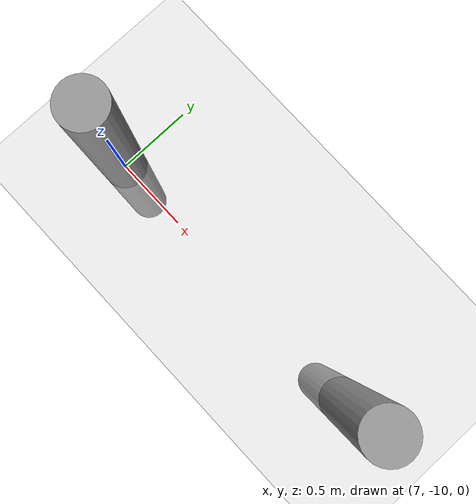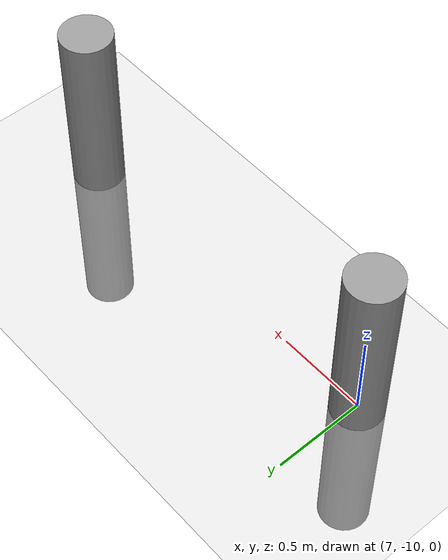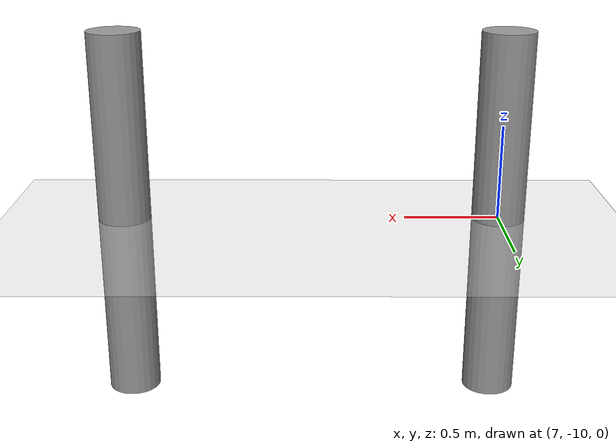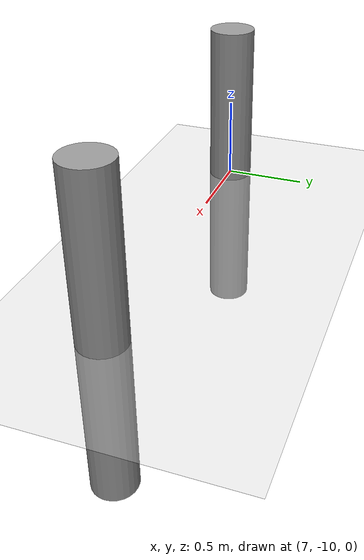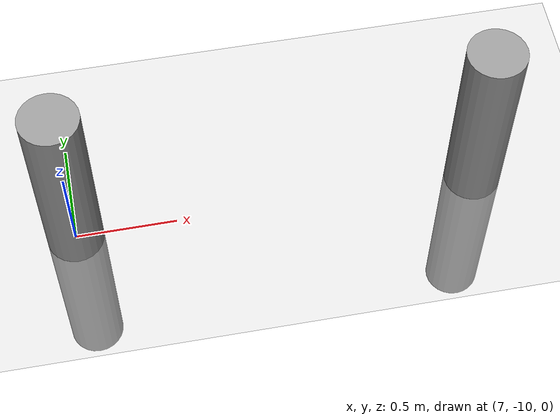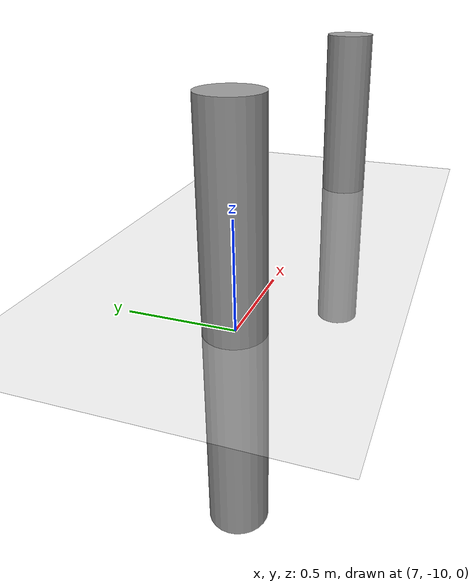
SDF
<sdf version="1.6">
 <world name="default">
  <model name="ground_plane">
   <static>1</static>
   <link name="link">
    <collision name="collision">
     <geometry><plane><normal>0 0 1</normal><size>100 100</size></plane></geometry>
     <surface><friction><ode><mu>100</mu><mu2>50</mu2></ode></friction></surface>
    </collision>
    <visual name="visual">
     <cast_shadows>0</cast_shadows>
     <geometry><plane><normal>0 0 1</normal><size>100 100</size></plane></geometry>
     <material>
      <script><uri>file://media/materials/scripts/gazebo.material</uri><name>Gazebo/Grey</name></script>
     </material>
    </visual>
   </link>
  </model>
  <model name="my_cylinder014_clone_28">
   <pose>9 -10 0 0 -0 0</pose>
   <link name="my_cylinder014::link">
    <inertial>
     <mass>1</mass>
     <inertia><ixx>0.145833</ixx><ixy>0</ixy><ixz>0</ixz><iyy>0.145833</iyy><iyz>0</iyz><izz>0.125</izz></inertia>
    </inertial>
    <visual name="visual">
     <geometry><cylinder><radius>0.14</radius><length>2</length></cylinder></geometry>
     <material>
      <script><name>Gazebo/Grey</name><uri>file://media/materials/scripts/gazebo.material</uri></script>
      <ambient>0.3 0.3 0.3 1</ambient>
      <diffuse>0.7 0.7 0.7 1</diffuse>
      <specular>1 0.01 0.01 1</specular>
      <emissive>0 0 0 1</emissive>
      <shader type="vertex"><normal_map>__default__</normal_map></shader>
     </material>
    </visual>
    <collision name="collision">
     <geometry><cylinder><radius>0.14</radius><length>2</length></cylinder></geometry>
     <surface>
      <friction>
       <ode><mu>1</mu><mu2>1</mu2><fdir1>0 0 0</fdir1><slip1>0</slip1><slip2>0</slip2></ode>
       <torsional>
        <coefficient>1</coefficient>
        <patch_radius>0</patch_radius>
        <surface_radius>0</surface_radius>
        <use_patch_radius>1</use_patch_radius>
        <ode><slip>0</slip></ode>
       </torsional>
      </friction>
      <bounce><restitution_coefficient>0</restitution_coefficient><threshold>1e+06</threshold></bounce>
      <contact>
       <collide_without_contact>0</collide_without_contact>
       <collide_without_contact_bitmask>1</collide_without_contact_bitmask>
       <collide_bitmask>1</collide_bitmask>
       <ode>
        <soft_cfm>0</soft_cfm>
        <soft_erp>0.2</soft_erp>
        <kp>1e+13</kp>
        <kd>1</kd>
        <max_vel>0.01</max_vel>
        <min_depth>0</min_depth>
       </ode>
       <bullet>
        <split_impulse>1</split_impulse>
        <split_impulse_penetration_threshold>-0.01</split_impulse_penetration_threshold>
        <soft_cfm>0</soft_cfm>
        <soft_erp>0.2</soft_erp>
        <kp>1e+13</kp>
        <kd>1</kd>
       </bullet>
      </contact>
     </surface>
    </collision>
   </link>
   <static>1</static>
  </model>
  <model name="my_cylinder014_clone_28">
   <pose>9 -10 0 0 -0 0</pose>
   <link name="my_cylinder014::link">
    <inertial>
     <mass>1</mass>
     <inertia><ixx>0.145833</ixx><ixy>0</ixy><ixz>0</ixz><iyy>0.145833</iyy><iyz>0</iyz><izz>0.125</izz></inertia>
    </inertial>
    <visual name="visual">
     <geometry><cylinder><radius>0.14</radius><length>2</length></cylinder></geometry>
     <material>
      <script><name>Gazebo/Grey</name><uri>file://media/materials/scripts/gazebo.material</uri></script>
      <ambient>0.3 0.3 0.3 1</ambient>
      <diffuse>0.7 0.7 0.7 1</diffuse>
      <specular>1 0.01 0.01 1</specular>
      <emissive>0 0 0 1</emissive>
      <shader type="vertex"><normal_map>__default__</normal_map></shader>
     </material>
    </visual>
    <collision name="collision">
     <geometry><cylinder><radius>0.14</radius><length>2</length></cylinder></geometry>
     <surface>
      <friction>
       <ode><mu>1</mu><mu2>1</mu2><fdir1>0 0 0</fdir1><slip1>0</slip1><slip2>0</slip2></ode>
       <torsional>
        <coefficient>1</coefficient>
        <patch_radius>0</patch_radius>
        <surface_radius>0</surface_radius>
        <use_patch_radius>1</use_patch_radius>
        <ode><slip>0</slip></ode>
       </torsional>
      </friction>
      <bounce><restitution_coefficient>0</restitution_coefficient><threshold>1e+06</threshold></bounce>
      <contact>
       <collide_without_contact>0</collide_without_contact>
       <collide_without_contact_bitmask>1</collide_without_contact_bitmask>
       <collide_bitmask>1</collide_bitmask>
       <ode>
        <soft_cfm>0</soft_cfm>
        <soft_erp>0.2</soft_erp>
        <kp>1e+13</kp>
        <kd>1</kd>
        <max_vel>0.01</max_vel>
        <min_depth>0</min_depth>
       </ode>
       <bullet>
        <split_impulse>1</split_impulse>
        <split_impulse_penetration_threshold>-0.01</split_impulse_penetration_threshold>
        <soft_cfm>0</soft_cfm>
        <soft_erp>0.2</soft_erp>
        <kp>1e+13</kp>
        <kd>1</kd>
       </bullet>
      </contact>
     </surface>
    </collision>
   </link>
   <static>1</static>
  </model>
  <model name="my_cylinder014_clone_27">
   <pose>7 -10 0 0 -0 0</pose>
   <link name="my_cylinder014::link">
    <inertial>
     <mass>1</mass>
     <inertia><ixx>0.145833</ixx><ixy>0</ixy><ixz>0</ixz><iyy>0.145833</iyy><iyz>0</iyz><izz>0.125</izz></inertia>
    </inertial>
    <visual name="visual">
     <geometry><cylinder><radius>0.14</radius><length>2</length></cylinder></geometry>
     <material>
      <script><name>Gazebo/Grey</name><uri>file://media/materials/scripts/gazebo.material</uri></script>
      <ambient>0.3 0.3 0.3 1</ambient>
      <diffuse>0.7 0.7 0.7 1</diffuse>
      <specular>1 0.01 0.01 1</specular>
      <emissive>0 0 0 1</emissive>
      <shader type="vertex"><normal_map>__default__</normal_map></shader>
     </material>
    </visual>
    <collision name="collision">
     <geometry><cylinder><radius>0.14</radius><length>2</length></cylinder></geometry>
     <surface>
      <friction>
       <ode><mu>1</mu><mu2>1</mu2><fdir1>0 0 0</fdir1><slip1>0</slip1><slip2>0</slip2></ode>
       <torsional>
        <coefficient>1</coefficient>
        <patch_radius>0</patch_radius>
        <surface_radius>0</surface_radius>
        <use_patch_radius>1</use_patch_radius>
        <ode><slip>0</slip></ode>
       </torsional>
      </friction>
      <bounce><restitution_coefficient>0</restitution_coefficient><threshold>1e+06</threshold></bounce>
      <contact>
       <collide_without_contact>0</collide_without_contact>
       <collide_without_contact_bitmask>1</collide_without_contact_bitmask>
       <collide_bitmask>1</collide_bitmask>
       <ode>
        <soft_cfm>0</soft_cfm>
        <soft_erp>0.2</soft_erp>
        <kp>1e+13</kp>
        <kd>1</kd>
        <max_vel>0.01</max_vel>
        <min_depth>0</min_depth>
       </ode>
       <bullet>
        <split_impulse>1</split_impulse>
        <split_impulse_penetration_threshold>-0.01</split_impulse_penetration_threshold>
        <soft_cfm>0</soft_cfm>
        <soft_erp>0.2</soft_erp>
        <kp>1e+13</kp>
        <kd>1</kd>
       </bullet>
      </contact>
     </surface>
    </collision>
   </link>
   <static>1</static>
  </model>
 </world>
</sdf>
